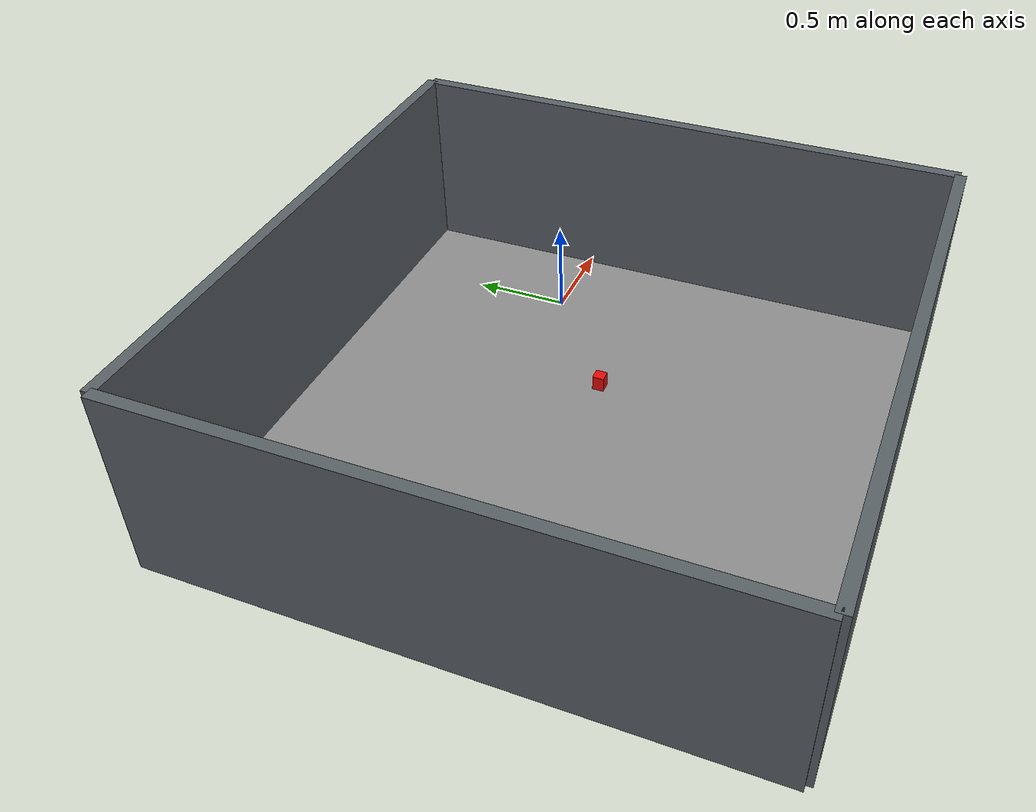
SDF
<?xml version="1.0"?>
<sdf version="1.6">
  <world name="default">
    <light name="sun" type="directional">
      <cast_shadows>1</cast_shadows>
      <pose>0 0 10 0 0 0</pose>
      <diffuse>0.8 0.8 0.8 1</diffuse>
      <specular>0.1 0.1 0.1 1</specular>
      <attenuation>
        <range>1000</range>
        <constant>0.9</constant>
        <linear>0.01</linear>
        <quadratic>0.001</quadratic>
      </attenuation>
      <direction>-0.5 0.5 -1</direction>
    </light>

    <!-- 3 m x 3 m room centered at (-1.0, -0.5). -->
    <model name="room_floor">
      <static>1</static>
      <pose>-1.0 -0.5 -0.01 0 0 0</pose>
      <link name="link">
        <collision name="collision">
          <geometry>
            <box>
              <size>3.0 3.0 0.02</size>
            </box>
          </geometry>
          <surface>
            <friction>
              <ode>
                <mu>100</mu>
                <mu2>50</mu2>
              </ode>
            </friction>
          </surface>
        </collision>
        <visual name="visual">
          <cast_shadows>0</cast_shadows>
          <geometry>
            <box>
              <size>3.0 3.0 0.02</size>
            </box>
          </geometry>
          <material>
            <ambient>0.55 0.55 0.55 1</ambient>
            <diffuse>0.55 0.55 0.55 1</diffuse>
          </material>
        </visual>
      </link>
    </model>

    <model name="wall_north">
      <static>1</static>
      <pose>-1.0 1.0 0.5 0 0 0</pose>
      <link name="link">
        <collision name="collision">
          <geometry>
            <box>
              <size>3.0 0.06 1.0</size>
            </box>
          </geometry>
        </collision>
        <visual name="visual">
          <geometry>
            <box>
              <size>3.0 0.06 1.0</size>
            </box>
          </geometry>
          <material>
            <ambient>0.35 0.38 0.40 1</ambient>
            <diffuse>0.35 0.38 0.40 1</diffuse>
          </material>
        </visual>
      </link>
    </model>

    <model name="wall_south">
      <static>1</static>
      <pose>-1.0 -2.0 0.5 0 0 0</pose>
      <link name="link">
        <collision name="collision">
          <geometry>
            <box>
              <size>3.0 0.06 1.0</size>
            </box>
          </geometry>
        </collision>
        <visual name="visual">
          <geometry>
            <box>
              <size>3.0 0.06 1.0</size>
            </box>
          </geometry>
          <material>
            <ambient>0.35 0.38 0.40 1</ambient>
            <diffuse>0.35 0.38 0.40 1</diffuse>
          </material>
        </visual>
      </link>
    </model>

    <model name="wall_east">
      <static>1</static>
      <pose>0.5 -0.5 0.5 0 0 0</pose>
      <link name="link">
        <collision name="collision">
          <geometry>
            <box>
              <size>0.06 3.0 1.0</size>
            </box>
          </geometry>
        </collision>
        <visual name="visual">
          <geometry>
            <box>
              <size>0.06 3.0 1.0</size>
            </box>
          </geometry>
          <material>
            <ambient>0.35 0.38 0.40 1</ambient>
            <diffuse>0.35 0.38 0.40 1</diffuse>
          </material>
        </visual>
      </link>
    </model>

    <model name="wall_west">
      <static>1</static>
      <pose>-2.5 -0.5 0.5 0 0 0</pose>
      <link name="link">
        <collision name="collision">
          <geometry>
            <box>
              <size>0.06 3.0 1.0</size>
            </box>
          </geometry>
        </collision>
        <visual name="visual">
          <geometry>
            <box>
              <size>0.06 3.0 1.0</size>
            </box>
          </geometry>
          <material>
            <ambient>0.35 0.38 0.40 1</ambient>
            <diffuse>0.35 0.38 0.40 1</diffuse>
          </material>
        </visual>
      </link>
    </model>

    <model name="grasp_test_cube">
      <static>1</static>
      <pose>-0.70 -0.50 0.115 0 0 0</pose>
      <link name="link">
        <collision name="collision">
          <geometry>
            <box>
              <size>0.06 0.06 0.08</size>
            </box>
          </geometry>
        </collision>
        <visual name="visual">
          <geometry>
            <box>
              <size>0.06 0.06 0.08</size>
            </box>
          </geometry>
          <material>
            <ambient>0.9 0.04 0.03 1</ambient>
            <diffuse>0.9 0.04 0.03 1</diffuse>
          </material>
        </visual>
      </link>
    </model>

    <gravity>0 0 -9.8</gravity>
    <magnetic_field>6e-06 2.3e-05 -4.2e-05</magnetic_field>
    <atmosphere type="adiabatic"/>
    <physics name="default_physics" default="0" type="ode">
      <max_step_size>0.001</max_step_size>
      <real_time_factor>1</real_time_factor>
      <real_time_update_rate>1000</real_time_update_rate>
    </physics>
    <plugin
      filename="ignition-gazebo-physics-system"
      name="gz::sim::systems::Physics">
    </plugin>
    <plugin
      filename="ignition-gazebo-user-commands-system"
      name="gz::sim::systems::UserCommands">
    </plugin>
    <plugin
      filename="ignition-gazebo-scene-broadcaster-system"
      name="gz::sim::systems::SceneBroadcaster">
    </plugin>
    <plugin
      filename="ignition-gazebo-sensors-system"
      name="gz::sim::systems::Sensors">
      <render_engine>ogre2</render_engine>
    </plugin>
    <plugin
      filename="ignition-gazebo-imu-system"
      name="gz::sim::systems::Imu">
    </plugin>
    <scene>
      <ambient>0.4 0.4 0.4 1</ambient>
      <background>0.7 0.7 0.7 1</background>
      <shadows>false</shadows>
    </scene>
  </world>
</sdf>
